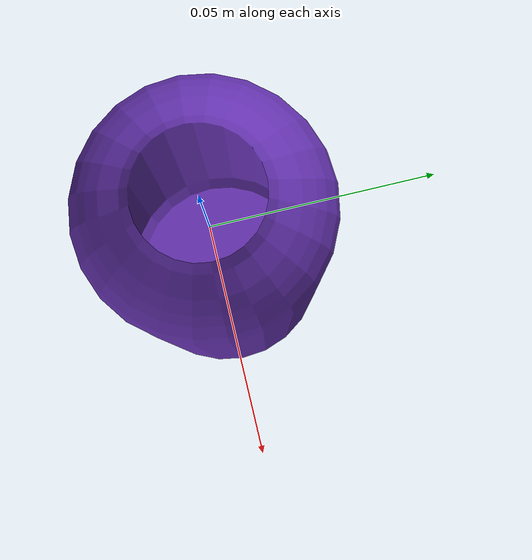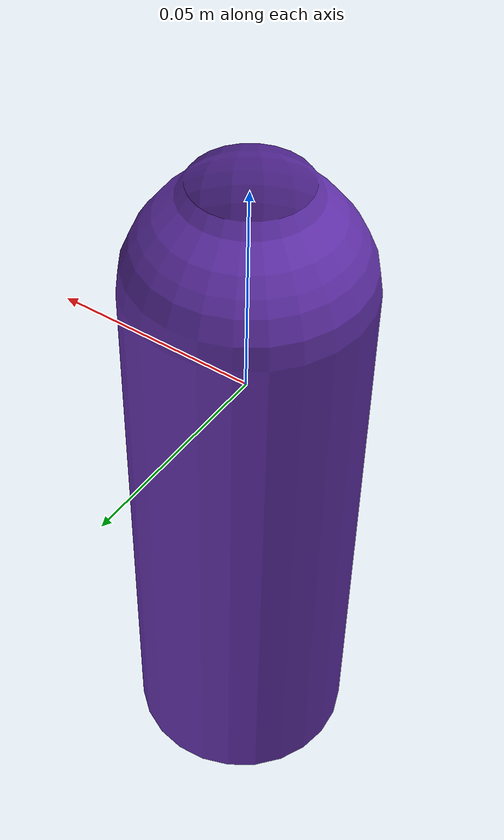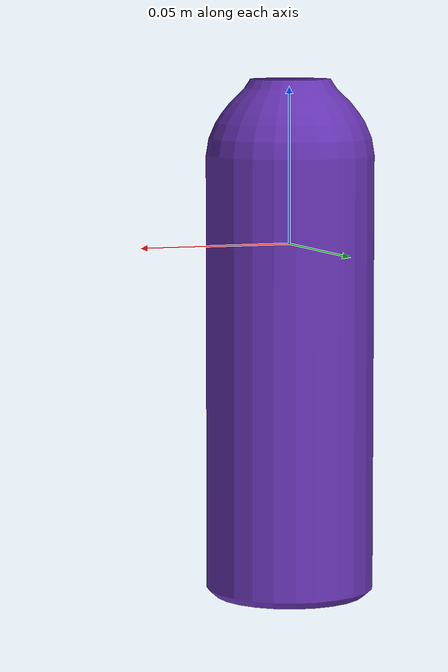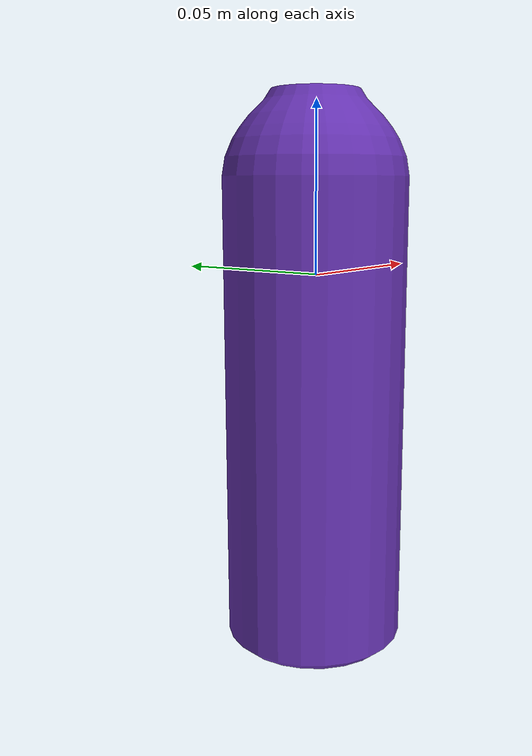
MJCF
<mujoco model="top_watertight_tiny">
  <default>
    <default group="2" type="mesh" contype="0" conaffinity="0">
      <geom group="2" type="mesh" contype="0" conaffinity="0"/>
    </default>
    <default group="3" type="mesh">
      <geom group="3" type="mesh"/>
    </default>
  </default>
  <asset>
    <mesh file="top_watertight_tiny.obj"/>
    <mesh file="top_watertight_tiny_collision_0.obj"/>
    <mesh file="top_watertight_tiny_collision_1.obj"/>
    <mesh file="top_watertight_tiny_collision_2.obj"/>
    <mesh file="top_watertight_tiny_collision_3.obj"/>
    <mesh file="top_watertight_tiny_collision_4.obj"/>
    <mesh file="top_watertight_tiny_collision_5.obj"/>
    <mesh file="top_watertight_tiny_collision_6.obj"/>
    <mesh file="top_watertight_tiny_collision_7.obj"/>
    <mesh file="top_watertight_tiny_collision_8.obj"/>
    <mesh file="top_watertight_tiny_collision_9.obj"/>
    <mesh file="top_watertight_tiny_collision_10.obj"/>
    <mesh file="top_watertight_tiny_collision_11.obj"/>
    <mesh file="top_watertight_tiny_collision_12.obj"/>
    <mesh file="top_watertight_tiny_collision_13.obj"/>
    <mesh file="top_watertight_tiny_collision_14.obj"/>
    <mesh file="top_watertight_tiny_collision_15.obj"/>
    <mesh file="top_watertight_tiny_collision_16.obj"/>
    <mesh file="top_watertight_tiny_collision_17.obj"/>
    <mesh file="top_watertight_tiny_collision_18.obj"/>
    <mesh file="top_watertight_tiny_collision_19.obj"/>
    <mesh file="top_watertight_tiny_collision_20.obj"/>
    <mesh file="top_watertight_tiny_collision_21.obj"/>
    <mesh file="top_watertight_tiny_collision_22.obj"/>
    <mesh file="top_watertight_tiny_collision_23.obj"/>
    <mesh file="top_watertight_tiny_collision_24.obj"/>
    <mesh file="top_watertight_tiny_collision_25.obj"/>
    <mesh file="top_watertight_tiny_collision_26.obj"/>
    <mesh file="top_watertight_tiny_collision_27.obj"/>
    <mesh file="top_watertight_tiny_collision_28.obj"/>
    <mesh file="top_watertight_tiny_collision_29.obj"/>
    <mesh file="top_watertight_tiny_collision_30.obj"/>
    <mesh file="top_watertight_tiny_collision_31.obj"/>
    <mesh file="top_watertight_tiny_collision_32.obj"/>
    <mesh file="top_watertight_tiny_collision_33.obj"/>
  </asset>
  <worldbody>
    <body name="top_watertight_tiny">
      <freejoint/>
      <geom mesh="top_watertight_tiny" group="2" type="mesh" rgba="0.4 0.2 0.7 1" contype="0" conaffinity="0"/>
      <geom mesh="top_watertight_tiny_collision_0" rgba="0.5838808770320267 0.16024286723195047 0.9274841360253705 1" group="3" type="mesh"/>
      <geom mesh="top_watertight_tiny_collision_1" rgba="0.2859655240306881 0.8735535389732758 0.46463092634675607 1" group="3" type="mesh"/>
      <geom mesh="top_watertight_tiny_collision_2" rgba="0.8557717012830165 0.424814297170355 0.022844755695275776 1" group="3" type="mesh"/>
      <geom mesh="top_watertight_tiny_collision_3" rgba="0.927643087580724 0.3913718604235785 0.8611790141652644 1" group="3" type="mesh"/>
      <geom mesh="top_watertight_tiny_collision_4" rgba="0.38281858228349874 0.8904693037091685 0.013745514335092301 1" group="3" type="mesh"/>
      <geom mesh="top_watertight_tiny_collision_5" rgba="0.5652983945985984 0.044779843581251644 0.32551051070726356 1" group="3" type="mesh"/>
      <geom mesh="top_watertight_tiny_collision_6" rgba="0.8822057925030022 0.6989202979402465 0.06247204981350174 1" group="3" type="mesh"/>
      <geom mesh="top_watertight_tiny_collision_7" rgba="0.47329044078501326 0.25452902644892506 0.3092036964012118 1" group="3" type="mesh"/>
      <geom mesh="top_watertight_tiny_collision_8" rgba="0.764433701615191 0.12029721737294263 0.5733534030900913 1" group="3" type="mesh"/>
      <geom mesh="top_watertight_tiny_collision_9" rgba="0.622439698264973 0.7552944395643298 0.1825275956274277 1" group="3" type="mesh"/>
      <geom mesh="top_watertight_tiny_collision_10" rgba="0.4519312766326846 0.4903700970442223 0.49112006383751716 1" group="3" type="mesh"/>
      <geom mesh="top_watertight_tiny_collision_11" rgba="0.8651051862686399 0.5684986870750321 0.08725653788236531 1" group="3" type="mesh"/>
      <geom mesh="top_watertight_tiny_collision_12" rgba="0.4596493856660716 0.22657335923281618 0.41475330553362466 1" group="3" type="mesh"/>
      <geom mesh="top_watertight_tiny_collision_13" rgba="0.2114126483432175 0.5490929606472804 0.5397889778486094 1" group="3" type="mesh"/>
      <geom mesh="top_watertight_tiny_collision_14" rgba="0.8673096606183635 0.059002437955801734 0.02688453104488786 1" group="3" type="mesh"/>
      <geom mesh="top_watertight_tiny_collision_15" rgba="0.3015172002483575 0.9849850228297916 0.7891960306993071 1" group="3" type="mesh"/>
      <geom mesh="top_watertight_tiny_collision_16" rgba="0.2508475766205479 0.2103850191655473 0.8352786893594053 1" group="3" type="mesh"/>
      <geom mesh="top_watertight_tiny_collision_17" rgba="0.40167991117084634 0.8349001825865444 0.9587799108100149 1" group="3" type="mesh"/>
      <geom mesh="top_watertight_tiny_collision_18" rgba="0.7352615893208766 0.12709950464172537 0.7903636152547142 1" group="3" type="mesh"/>
      <geom mesh="top_watertight_tiny_collision_19" rgba="0.8151158597898407 0.7113197265128012 0.8084434737964898 1" group="3" type="mesh"/>
      <geom mesh="top_watertight_tiny_collision_20" rgba="0.7421938185008691 0.5664571416290857 0.5807498885978792 1" group="3" type="mesh"/>
      <geom mesh="top_watertight_tiny_collision_21" rgba="0.8661745510110156 0.6598950683994533 0.8874225999417767 1" group="3" type="mesh"/>
      <geom mesh="top_watertight_tiny_collision_22" rgba="0.2062418206499813 0.6703920300263546 0.6794445054079213 1" group="3" type="mesh"/>
      <geom mesh="top_watertight_tiny_collision_23" rgba="0.5208765349898498 0.03012379090395234 0.20507781726040197 1" group="3" type="mesh"/>
      <geom mesh="top_watertight_tiny_collision_24" rgba="0.3660276092606942 0.8172657274901186 0.6410120909310704 1" group="3" type="mesh"/>
      <geom mesh="top_watertight_tiny_collision_25" rgba="0.9654128110545822 0.6418203609907077 0.31313706448264933 1" group="3" type="mesh"/>
      <geom mesh="top_watertight_tiny_collision_26" rgba="0.253681089601018 0.8289973271943135 0.7754223703801991 1" group="3" type="mesh"/>
      <geom mesh="top_watertight_tiny_collision_27" rgba="0.5495951548260221 0.25253360178597106 0.7047801638100372 1" group="3" type="mesh"/>
      <geom mesh="top_watertight_tiny_collision_28" rgba="0.379709031637094 0.9700035468434208 0.7462082825415741 1" group="3" type="mesh"/>
      <geom mesh="top_watertight_tiny_collision_29" rgba="0.9555934881465175 0.7647212106344229 0.9437564726747992 1" group="3" type="mesh"/>
      <geom mesh="top_watertight_tiny_collision_30" rgba="0.10096434833003509 0.8927386228646473 0.7302567767222437 1" group="3" type="mesh"/>
      <geom mesh="top_watertight_tiny_collision_31" rgba="0.1834430545494239 0.38224472007959676 0.8011025314324118 1" group="3" type="mesh"/>
      <geom mesh="top_watertight_tiny_collision_32" rgba="0.11648325262676129 0.3566069192006701 0.6614943386681945 1" group="3" type="mesh"/>
      <geom mesh="top_watertight_tiny_collision_33" rgba="0.23756290688537152 0.2583209331284073 0.23871590363692397 1" group="3" type="mesh"/>
    </body>
  </worldbody>
</mujoco>
